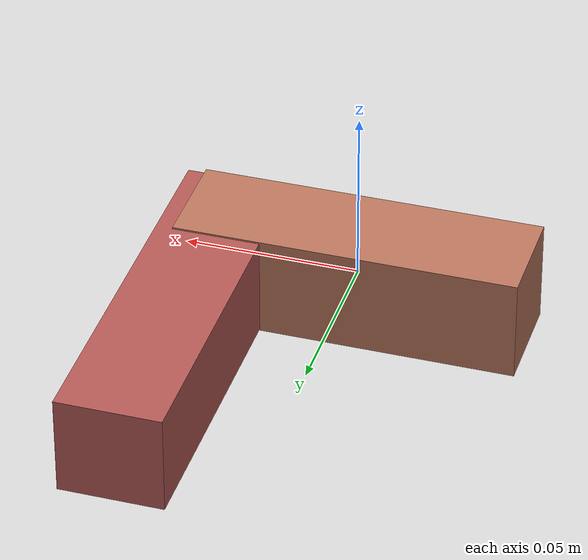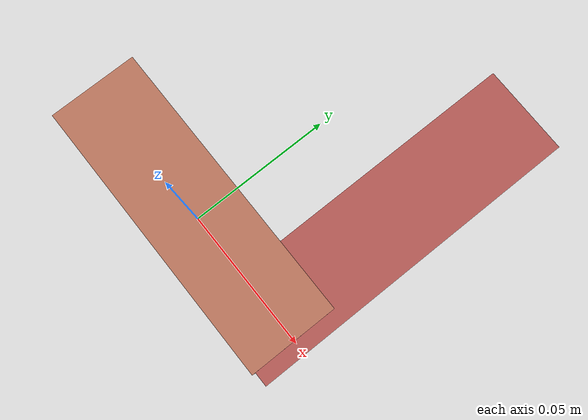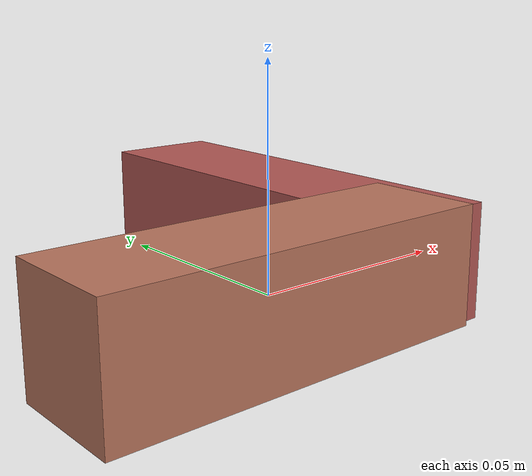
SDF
<sdf version="1.4"><world name="default"><model name="object0"><link name="link1"><pose>0 0 0 0 0 0</pose><inertial><pose>0 0 0 0 0 0</pose><mass>0.05307937234997527</mass><inertia><ixx>7.96190585249629e-06</ixx><ixy>0</ixy><iyy>4.67183994821768e-05</iyy><ixz>0</ixz><iyz>0</iyz><izz>4.67183994821768e-05</izz></inertia></inertial><visual name="link1_visual"><pose>0 0  0 0 0 0</pose><geometry><box><size>0.09829513398143568 0.03 0.03</size></box></geometry><material><diffuse>0.7318890326519436 0.461723490157466 0.36615890835160336 1</diffuse></material></visual><collision><pose>0 0  0 0 0 0</pose><geometry><box><size>0.09829513398143568 0.03 0.03</size></box></geometry></collision></link><link name="link2"><pose>0.039012939106417156 0.0421222828614842 0 0 0 0</pose><inertial><pose>0 0 0 0 0 0</pose><mass>0.06049399327506176</mass><inertia><ixx>6.750527375993902e-05</ixx><ixy>0</ixy><iyy>8.77667019099021e-06</iyy><ixz>0</ixz><iyz>0</iyz><izz>6.780270256020807e-05</izz></inertia></inertial><visual name="link2_visual"><pose>0 0  0 0 0 0</pose><geometry><box><size>0.03 0.1120259134723366 0.028999999999999998</size></box></geometry><material><diffuse>0.7038220703966448 0.3484170102935531 0.33346331568465576 1</diffuse></material></visual><collision><pose>0 0  0 0 0 0</pose><geometry><box><size>0.03 0.1120259134723366 0.028999999999999998</size></box></geometry></collision></link><joint name="link_joint_0" type="fixed"><parent>link1</parent><child>link2</child><pose>0 0 0 0 0 0</pose><axis><xyz>0 0 1</xyz></axis></joint></model></world></sdf>
